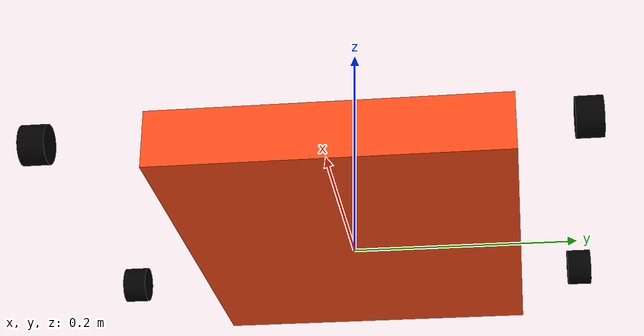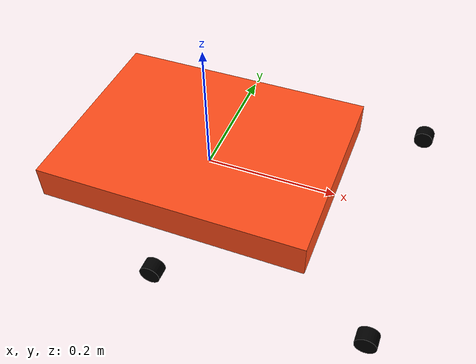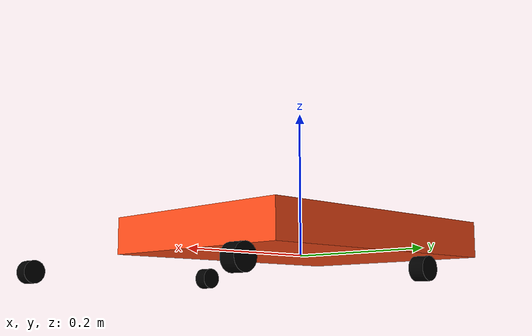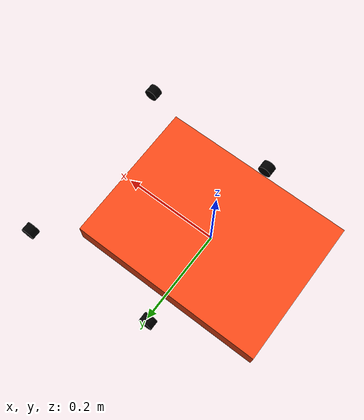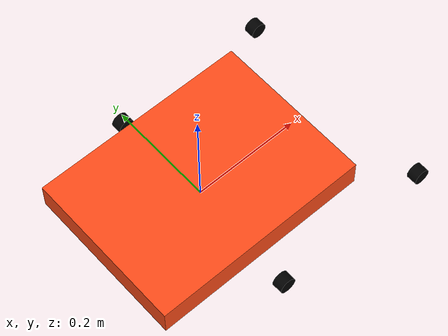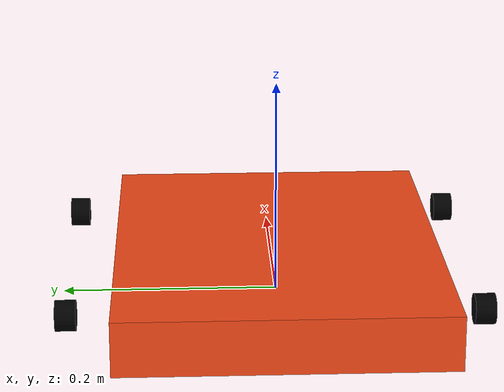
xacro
<?xml version="1.0"?>
<!-- Basic differential drive mobile base -->
<robot xmlns:xacro="http://www.ros.org/wiki/xacro" name="diffdrive_robot">
  <xacro:arg name="prefix" default="" />
  <xacro:arg name="use_mock_hardware" default="false" />

  <xacro:include filename="$(find my_odrive_botwheel_explorer)/urdf/diffbot_description.urdf.xacro" />

  <!-- Import Rviz colors -->

  <!-- Import diffbot ros2_control description -->
  <xacro:include filename="$(find my_odrive_botwheel_explorer)/urdf/diffbot.ros2_control.xacro" />

  <xacro:diffbot prefix="$(arg prefix)" />

  <xacro:diffbot_ros2_control
    name="DiffBot" prefix="$(arg prefix)" use_mock_hardware="$(arg use_mock_hardware)"/>

</robot>

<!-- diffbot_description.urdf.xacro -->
<robot xmlns:xacro="http://www.ros.org/wiki/xacro">

  <xacro:macro name="diffbot" params="prefix">

  <!-- Constants for robot dimensions -->
  <xacro:property name="PI" value="3.1415926535897931"/>
  <xacro:property name="base_mass" value="0.3" /> <!-- arbitrary value for base mass -->
  <xacro:property name="base_width" value="0.4" />
  <xacro:property name="base_length" value="0.3" />
  <xacro:property name="base_height" value="0.05" />
  <xacro:property name="wheel_mass" value="0.3" /> <!-- arbitrary value for wheel mass -->
  <xacro:property name="wheel_len" value="0.020" />
  <xacro:property name="wheel_radius" value="0.015" />
  <xacro:property name="z_offset" value="-${base_height/2}" /> <!-- Space btw top of beam and the each joint -->

  <material name="white">
      <color rgba="1 1 1 1" />
  </material>

  <material name="orange">
      <color rgba="1 0.3 0.1 1"/>
  </material>

  <material name="blue">
      <color rgba="0.2 0.2 1 1"/>
  </material>

  <material name="black">
      <color rgba="0 0 0 1"/>
  </material>

  <!-- Base Link -->
  <link name="${prefix}base_link">
    <collision>
      <origin xyz="0 0 0" rpy="0 0 0"/>
      <geometry>
        <box size="${base_width} ${base_length} ${base_height}"/>
      </geometry>
    </collision>

    <visual>
      <origin xyz="0 0 ${base_height/2}" rpy="0 0 0"/>
      <geometry>
        <box size="${base_width} ${base_length} ${base_height}"/>
      </geometry>
      <material name="orange"/>
    </visual>

    <inertial>
      <origin xyz="0 0 0" rpy="0 0 0"/>
      <mass value="${base_mass}"/>
      <inertia
        ixx="${base_mass / 12.0 * (base_length*base_length + base_height*base_height)}" ixy="0.0" ixz="0.0"
        iyy="${base_mass / 12.0 * (base_height*base_height + base_width*base_width)}" iyz="0.0"
        izz="${base_mass / 12.0 * (base_width*base_width + base_length*base_length)}"/>
      </inertial>
    </link>

    <!-- front left wheel joint -->
    <joint name="${prefix}front_left_wheel_joint" type="continuous">
      <parent link="${prefix}base_link"/>
      <child link="${prefix}front_left_wheel"/>
      <origin xyz="0 -${base_width/2} ${z_offset}" rpy="0 0 0"/>
      <axis xyz="0 1 0"/>
      <dynamics damping="0.2"/>
      <limit effort="100" velocity="1.0"/>
    </joint>

    <!-- front left wheel Link -->
    <link name="${prefix}front_left_wheel">
      <collision>
        <origin xyz="0 0 0" rpy="${PI/2} 0 0"/>
        <geometry>
          <cylinder length="${wheel_len}" radius="${wheel_radius}"/>
        </geometry>
      </collision>

      <visual>
        <origin xyz="0 0 0" rpy="${PI/2} 0 0"/>
        <geometry>
          <cylinder length="${wheel_len}" radius="${wheel_radius}"/>
        </geometry>
        <material name="black"/>
      </visual>

      <inertial>
        <origin xyz="0 0 0" rpy="${PI/2} 0 0"/>
        <mass value="${wheel_mass}"/>
        <inertia
          ixx="${wheel_mass / 12.0 * (3*wheel_radius*wheel_radius + wheel_len*wheel_len)}" ixy="0.0" ixz="0.0"
          iyy="${wheel_mass / 12.0 * (3*wheel_radius*wheel_radius + wheel_len*wheel_len)}" iyz="0.0"
          izz="${wheel_mass / 2.0 * wheel_radius*wheel_radius}"/>
        </inertial>
      </link>

    <!-- rear left wheel Joint -->
    <joint name="${prefix}rear_left_wheel_joint" type="continuous">
      <parent link="${prefix}base_link"/>
      <child link="${prefix}rear_left_wheel"/>
      <origin xyz="${base_length} -${base_width/2} ${z_offset}" rpy="0 0 0"/>
      <axis xyz="0 1 0"/>
      <dynamics damping="0.2"/>
      <limit effort="100" velocity="1.0"/>
    </joint>

    <!-- rear left wheel Link -->
    <link name="${prefix}rear_left_wheel">
      <collision>
        <origin xyz="0 0 0" rpy="${PI/2} 0 0"/>
        <geometry>
          <cylinder length="${wheel_len}" radius="${wheel_radius}"/>
        </geometry>
      </collision>

      <visual>
        <origin xyz="0 0 0" rpy="${PI/2} 0 0"/>
        <geometry>
          <cylinder length="${wheel_len}" radius="${wheel_radius}"/>
        </geometry>
        <material name="black"/>
      </visual>

      <inertial>
        <origin xyz="0 0 0" rpy="${PI/2} 0 0"/>
        <mass value="${wheel_mass}"/>
        <inertia
          ixx="${wheel_mass / 12.0 * (3*wheel_radius*wheel_radius + wheel_len*wheel_len)}" ixy="0.0" ixz="0.0"
          iyy="${wheel_mass / 12.0 * (3*wheel_radius*wheel_radius + wheel_len*wheel_len)}" iyz="0.0"
          izz="${wheel_mass / 2.0 * wheel_radius*wheel_radius}"/>
        </inertial>
      </link>

    <!-- front right wheel Joint -->
    <joint name="${prefix}front_right_wheel_joint" type="continuous">
      <parent link="${prefix}base_link"/>
      <child link="${prefix}front_right_wheel"/>
      <origin xyz="0 ${base_width/2} ${z_offset}" rpy="0 0 0"/>
      <axis xyz="0 1 0"/>
      <dynamics damping="0.2"/>
      <limit effort="100" velocity="1.0"/>
    </joint>

    <!-- front right wheel Link -->
    <link name="${prefix}front_right_wheel">
      <collision>
        <origin xyz="0 0 0" rpy="${PI/2} 0 0"/>
        <geometry>
          <cylinder length="${wheel_len}" radius="${wheel_radius}"/>
        </geometry>
      </collision>

      <visual>
        <origin xyz="0 0 0" rpy="${PI/2} 0 0"/>
        <geometry>
          <cylinder length="${wheel_len}" radius="${wheel_radius}"/>
        </geometry>
        <material name="black"/>
      </visual>

      <inertial>
        <origin xyz="0 0 0" rpy="${PI/2} 0 0"/>
        <mass value="${wheel_mass}"/>
        <inertia
          ixx="${wheel_mass / 12.0 * (3*wheel_radius*wheel_radius + wheel_len*wheel_len)}" ixy="0.0" ixz="0.0"
          iyy="${wheel_mass / 12.0 * (3*wheel_radius*wheel_radius + wheel_len*wheel_len)}" iyz="0.0"
          izz="${wheel_mass / 2.0 * wheel_radius*wheel_radius}"/>
        </inertial>
      </link>

    <!-- rear right wheel Joint -->
    <joint name="${prefix}rear_right_wheel_joint" type="continuous">
      <parent link="${prefix}base_link"/>
      <child link="${prefix}rear_right_wheel"/>
      <origin xyz="${base_length} ${base_width/2} ${z_offset}" rpy="0 0 0"/>
      <axis xyz="0 1 0"/>
      <dynamics damping="0.2"/>
      <limit effort="100" velocity="1.0"/>
    </joint>

    <!-- front right wheel Link -->
    <link name="${prefix}rear_right_wheel">
      <collision>
        <origin xyz="0 0 0" rpy="${PI/2} 0 0"/>
        <geometry>
          <cylinder length="${wheel_len}" radius="${wheel_radius}"/>
        </geometry>
      </collision>

      <visual>
        <origin xyz="0 0 0" rpy="${PI/2} 0 0"/>
        <geometry>
          <cylinder length="${wheel_len}" radius="${wheel_radius}"/>
        </geometry>
        <material name="black"/>
      </visual>

      <inertial>
        <origin xyz="0 0 0" rpy="${PI/2} 0 0"/>
        <mass value="${wheel_mass}"/>
        <inertia
          ixx="${wheel_mass / 12.0 * (3*wheel_radius*wheel_radius + wheel_len*wheel_len)}" ixy="0.0" ixz="0.0"
          iyy="${wheel_mass / 12.0 * (3*wheel_radius*wheel_radius + wheel_len*wheel_len)}" iyz="0.0"
          izz="${wheel_mass / 2.0 * wheel_radius*wheel_radius}"/>
        </inertial>
      </link>

  </xacro:macro>

</robot>
